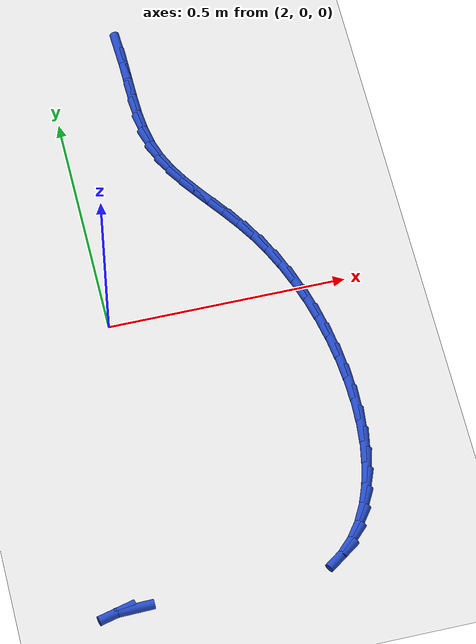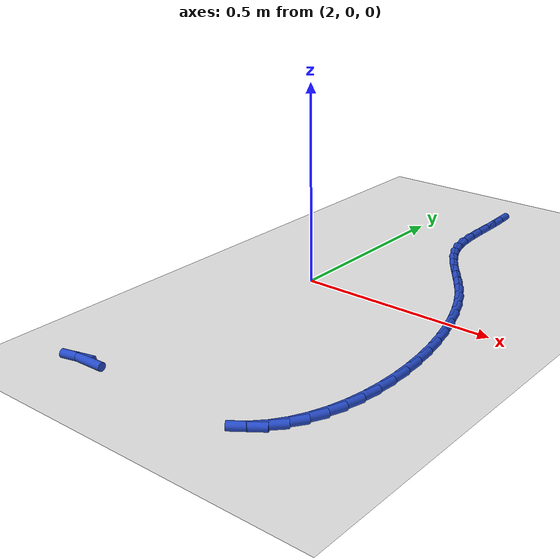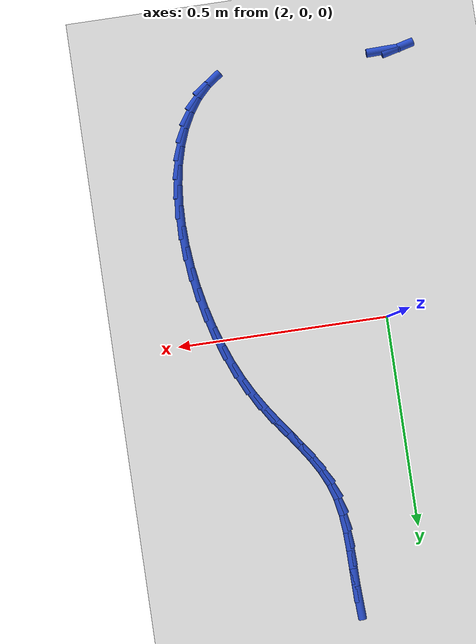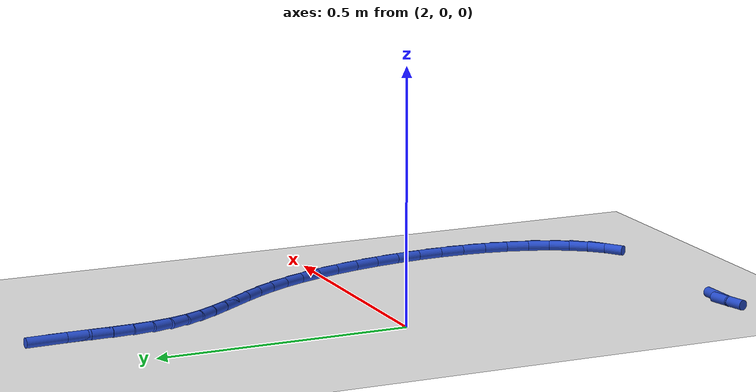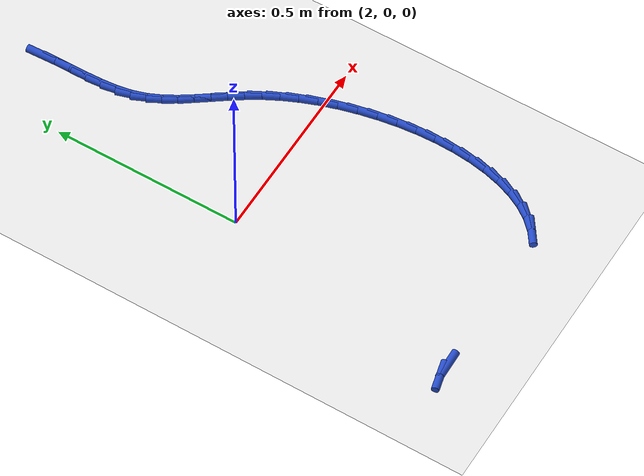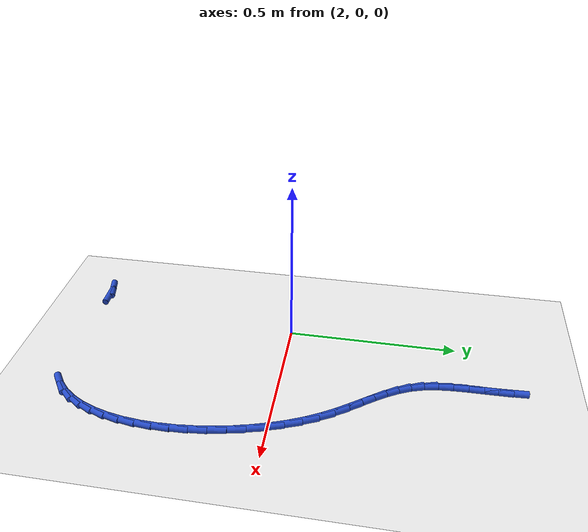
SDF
<sdf version="1.6">
 <world name="default">
  <model name="ground_plane">
   <static>1</static>
   <link name="link">
    <collision name="collision">
     <geometry><plane><normal>0 0 1</normal><size>100 100</size></plane></geometry>
     <surface><friction><ode><mu>100</mu><mu2>50</mu2></ode></friction></surface>
    </collision>
    <visual name="visual">
     <cast_shadows>0</cast_shadows>
     <geometry><plane><normal>0 0 1</normal><size>100 100</size></plane></geometry>
     <material>
      <script><uri>file://media/materials/scripts/gazebo.material</uri><name>Gazebo/WhiteGlow</name></script>
     </material>
    </visual>
   </link>
  </model>
  <model name="line">
   <link name="link_83">
    <pose>2.1645863265111944 0.6554411900002047 0.01 0 1.57 -1.5287942269386707</pose>
    <collision name="collision">
     <geometry><cylinder><radius>0.01</radius><length>0.08</length></cylinder></geometry>
    </collision>
    <visual name="visual">
     <material>
      <script><name>Gazebo/Blue</name><uri>file://media/materials/scripts/gazebo.material</uri></script>
     </material>
     <geometry><cylinder><radius>0.01</radius><length>0.08</length></cylinder></geometry>
    </visual>
   </link>
   <link name="link_84">
    <pose>2.1663398544412753 0.6137171657905847 0.01 0 1.57 -1.5593314493701491</pose>
    <collision name="collision">
     <geometry><cylinder><radius>0.01</radius><length>0.08</length></cylinder></geometry>
    </collision>
    <visual name="visual">
     <material>
      <script><name>Gazebo/Blue</name><uri>file://media/materials/scripts/gazebo.material</uri></script>
     </material>
     <geometry><cylinder><radius>0.01</radius><length>0.08</length></cylinder></geometry>
    </visual>
   </link>
   <link name="link_85">
    <pose>2.16682685572055 0.5712413569927697 0.01 0 1.57 -1.561846227927909</pose>
    <collision name="collision">
     <geometry><cylinder><radius>0.01</radius><length>0.08</length></cylinder></geometry>
    </collision>
    <visual name="visual">
     <material>
      <script><name>Gazebo/Blue</name><uri>file://media/materials/scripts/gazebo.material</uri></script>
     </material>
     <geometry><cylinder><radius>0.01</radius><length>0.08</length></cylinder></geometry>
    </visual>
   </link>
   <link name="link_86">
    <pose>2.1672077922003914 0.5286802284619948 0.01 0 1.57 -1.5366187379274516</pose>
    <collision name="collision">
     <geometry><cylinder><radius>0.01</radius><length>0.08</length></cylinder></geometry>
    </collision>
    <visual name="visual">
     <material>
      <script><name>Gazebo/Blue</name><uri>file://media/materials/scripts/gazebo.material</uri></script>
     </material>
     <geometry><cylinder><radius>0.01</radius><length>0.08</length></cylinder></geometry>
    </visual>
   </link>
   <link name="link_87">
    <pose>2.1686431257321757 0.4867002450534943 0.01 0 1.57 -1.481421027224333</pose>
    <collision name="collision">
     <geometry><cylinder><radius>0.01</radius><length>0.08</length></cylinder></geometry>
    </collision>
    <visual name="visual">
     <material>
      <script><name>Gazebo/Blue</name><uri>file://media/materials/scripts/gazebo.material</uri></script>
     </material>
     <geometry><cylinder><radius>0.01</radius><length>0.08</length></cylinder></geometry>
    </visual>
   </link>
   <link name="link_88">
    <pose>2.172293318167279 0.4459678716225032 0.01 0 1.57 -1.3917498787343716</pose>
    <collision name="collision">
     <geometry><cylinder><radius>0.01</radius><length>0.08</length></cylinder></geometry>
    </collision>
    <visual name="visual">
     <material>
      <script><name>Gazebo/Blue</name><uri>file://media/materials/scripts/gazebo.material</uri></script>
     </material>
     <geometry><cylinder><radius>0.01</radius><length>0.08</length></cylinder></geometry>
    </visual>
   </link>
   <link name="link_89">
    <pose>2.1793188313570764 0.4071495730242558 0.01 0 1.57 -1.2655627059166776</pose>
    <collision name="collision">
     <geometry><cylinder><radius>0.01</radius><length>0.08</length></cylinder></geometry>
    </collision>
    <visual name="visual">
     <material>
      <script><name>Gazebo/Blue</name><uri>file://media/materials/scripts/gazebo.material</uri></script>
     </material>
     <geometry><cylinder><radius>0.01</radius><length>0.08</length></cylinder></geometry>
    </visual>
   </link>
   <link name="link_90">
    <pose>2.1907629837198024 0.3708281575461531 0.01 0 1.57 -1.1391215108139365</pose>
    <collision name="collision">
     <geometry><cylinder><radius>0.01</radius><length>0.08</length></cylinder></geometry>
    </collision>
    <visual name="visual">
     <material>
      <script><name>Gazebo/Blue</name><uri>file://media/materials/scripts/gazebo.material</uri></script>
     </material>
     <geometry><cylinder><radius>0.01</radius><length>0.08</length></cylinder></geometry>
    </visual>
   </link>
   <link name="link_91">
    <pose>2.2064701773079025 0.33673024183434963 0.01 0 1.57 -1.0412037112821395</pose>
    <collision name="collision">
     <geometry><cylinder><radius>0.01</radius><length>0.08</length></cylinder></geometry>
    </collision>
    <visual name="visual">
     <material>
      <script><name>Gazebo/Blue</name><uri>file://media/materials/scripts/gazebo.material</uri></script>
     </material>
     <geometry><cylinder><radius>0.01</radius><length>0.08</length></cylinder></geometry>
    </visual>
   </link>
   <link name="link_92">
    <pose>2.2255822343494494 0.3040807036396946 0.01 0 1.57 -0.9757254795598242</pose>
    <collision name="collision">
     <geometry><cylinder><radius>0.01</radius><length>0.08</length></cylinder></geometry>
    </collision>
    <visual name="visual">
     <material>
      <script><name>Gazebo/Blue</name><uri>file://media/materials/scripts/gazebo.material</uri></script>
     </material>
     <geometry><cylinder><radius>0.01</radius><length>0.08</length></cylinder></geometry>
    </visual>
   </link>
   <link name="link_93">
    <pose>2.247232077459046 0.2720980651615733 0.01 0 1.57 -0.9424663987992978</pose>
    <collision name="collision">
     <geometry><cylinder><radius>0.01</radius><length>0.08</length></cylinder></geometry>
    </collision>
    <visual name="visual">
     <material>
      <script><name>Gazebo/Blue</name><uri>file://media/materials/scripts/gazebo.material</uri></script>
     </material>
     <geometry><cylinder><radius>0.01</radius><length>0.08</length></cylinder></geometry>
    </visual>
   </link>
   <link name="link_94">
    <pose>2.270552629251295 0.24000084859937124 0.01 0 1.57 -0.9394460169639158</pose>
    <collision name="collision">
     <geometry><cylinder><radius>0.01</radius><length>0.08</length></cylinder></geometry>
    </collision>
    <visual name="visual">
     <material>
      <script><name>Gazebo/Blue</name><uri>file://media/materials/scripts/gazebo.material</uri></script>
     </material>
     <geometry><cylinder><radius>0.01</radius><length>0.08</length></cylinder></geometry>
    </visual>
   </link>
   <link name="link_95">
    <pose>2.2946768123408003 0.20700757615247362 0.01 0 1.57 -0.9641241904062359</pose>
    <collision name="collision">
     <geometry><cylinder><radius>0.01</radius><length>0.08</length></cylinder></geometry>
    </collision>
    <visual name="visual">
     <material>
      <script><name>Gazebo/Blue</name><uri>file://media/materials/scripts/gazebo.material</uri></script>
     </material>
     <geometry><cylinder><radius>0.01</radius><length>0.08</length></cylinder></geometry>
    </visual>
   </link>
   <link name="link_96">
    <pose>2.3187375493421625 0.17233677002026612 0.01 0 1.57 -1.0136687699276594</pose>
    <collision name="collision">
     <geometry><cylinder><radius>0.01</radius><length>0.08</length></cylinder></geometry>
    </collision>
    <visual name="visual">
     <material>
      <script><name>Gazebo/Blue</name><uri>file://media/materials/scripts/gazebo.material</uri></script>
     </material>
     <geometry><cylinder><radius>0.01</radius><length>0.08</length></cylinder></geometry>
    </visual>
   </link>
   <link name="link_97">
    <pose>2.341867762869987 0.13520695240213343 0.01 0 1.57 -1.082110295397254</pose>
    <collision name="collision">
     <geometry><cylinder><radius>0.01</radius><length>0.08</length></cylinder></geometry>
    </collision>
    <visual name="visual">
     <material>
      <script><name>Gazebo/Blue</name><uri>file://media/materials/scripts/gazebo.material</uri></script>
     </material>
     <geometry><cylinder><radius>0.01</radius><length>0.08</length></cylinder></geometry>
    </visual>
   </link>
   <link name="link_98">
    <pose>2.3632691628426152 0.0949561750106901 0.01 0 1.57 -1.1498402993242591</pose>
    <collision name="collision">
     <geometry><cylinder><radius>0.01</radius><length>0.08</length></cylinder></geometry>
    </collision>
    <visual name="visual">
     <material>
      <script><name>Gazebo/Blue</name><uri>file://media/materials/scripts/gazebo.material</uri></script>
     </material>
     <geometry><cylinder><radius>0.01</radius><length>0.08</length></cylinder></geometry>
    </visual>
   </link>
   <link name="link_99">
    <pose>2.382616158034814 0.051743883349846906 0.01 0 1.57 -1.211263069067479</pose>
    <collision name="collision">
     <geometry><cylinder><radius>0.01</radius><length>0.08</length></cylinder></geometry>
    </collision>
    <visual name="visual">
     <material>
      <script><name>Gazebo/Blue</name><uri>file://media/materials/scripts/gazebo.material</uri></script>
     </material>
     <geometry><cylinder><radius>0.01</radius><length>0.08</length></cylinder></geometry>
    </visual>
   </link>
   <link name="link_100">
    <pose>2.3997818230511556 0.0060747382269348265 0.01 0 1.57 -1.2683553480783911</pose>
    <collision name="collision">
     <geometry><cylinder><radius>0.01</radius><length>0.08</length></cylinder></geometry>
    </collision>
    <visual name="visual">
     <material>
      <script><name>Gazebo/Blue</name><uri>file://media/materials/scripts/gazebo.material</uri></script>
     </material>
     <geometry><cylinder><radius>0.01</radius><length>0.08</length></cylinder></geometry>
    </visual>
   </link>
   <link name="link_101">
    <pose>2.4146399191171124 -0.04154540643138603 0.01 0 1.57 -1.3227898475554039</pose>
    <collision name="collision">
     <geometry><cylinder><radius>0.01</radius><length>0.08</length></cylinder></geometry>
    </collision>
    <visual name="visual">
     <material>
      <script><name>Gazebo/Blue</name><uri>file://media/materials/scripts/gazebo.material</uri></script>
     </material>
     <geometry><cylinder><radius>0.01</radius><length>0.08</length></cylinder></geometry>
    </visual>
   </link>
   <link name="link_102">
    <pose>2.4270642074581543 -0.09061069669845565 0.01 0 1.57 -1.3760302588686746</pose>
    <collision name="collision">
     <geometry><cylinder><radius>0.01</radius><length>0.08</length></cylinder></geometry>
    </collision>
    <visual name="visual">
     <material>
      <script><name>Gazebo/Blue</name><uri>file://media/materials/scripts/gazebo.material</uri></script>
     </material>
     <geometry><cylinder><radius>0.01</radius><length>0.08</length></cylinder></geometry>
    </visual>
   </link>
   <link name="link_103">
    <pose>2.436928449299754 -0.14061527864761392 0.01 0 1.57 -1.4294331427408962</pose>
    <collision name="collision">
     <geometry><cylinder><radius>0.01</radius><length>0.08</length></cylinder></geometry>
    </collision>
    <visual name="visual">
     <material>
      <script><name>Gazebo/Blue</name><uri>file://media/materials/scripts/gazebo.material</uri></script>
     </material>
     <geometry><cylinder><radius>0.01</radius><length>0.08</length></cylinder></geometry>
    </visual>
   </link>
   <link name="link_104">
    <pose>2.444106405867381 -0.19105329835220072 0.01 0 1.57 -1.484337525440249</pose>
    <collision name="collision">
     <geometry><cylinder><radius>0.01</radius><length>0.08</length></cylinder></geometry>
    </collision>
    <visual name="visual">
     <material>
      <script><name>Gazebo/Blue</name><uri>file://media/materials/scripts/gazebo.material</uri></script>
     </material>
     <geometry><cylinder><radius>0.01</radius><length>0.08</length></cylinder></geometry>
    </visual>
   </link>
   <link name="link_105">
    <pose>2.4484718383865074 -0.241418901885556 0.01 0 1.57 -1.5421488918212187</pose>
    <collision name="collision">
     <geometry><cylinder><radius>0.01</radius><length>0.08</length></cylinder></geometry>
    </collision>
    <visual name="visual">
     <material>
      <script><name>Gazebo/Blue</name><uri>file://media/materials/scripts/gazebo.material</uri></script>
     </material>
     <geometry><cylinder><radius>0.01</radius><length>0.08</length></cylinder></geometry>
    </visual>
   </link>
   <link name="link_106">
    <pose>2.4498985080826037 -0.29120623532101964 0.01 0 1.57 1.5371699114545667</pose>
    <collision name="collision">
     <geometry><cylinder><radius>0.01</radius><length>0.08</length></cylinder></geometry>
    </collision>
    <visual name="visual">
     <material>
      <script><name>Gazebo/Blue</name><uri>file://media/materials/scripts/gazebo.material</uri></script>
     </material>
     <geometry><cylinder><radius>0.01</radius><length>0.08</length></cylinder></geometry>
    </visual>
   </link>
   <link name="link_107">
    <pose>2.448260176181142 -0.33990944473193146 0.01 0 1.57 1.4686432551191324</pose>
    <collision name="collision">
     <geometry><cylinder><radius>0.01</radius><length>0.08</length></cylinder></geometry>
    </collision>
    <visual name="visual">
     <material>
      <script><name>Gazebo/Blue</name><uri>file://media/materials/scripts/gazebo.material</uri></script>
     </material>
     <geometry><cylinder><radius>0.01</radius><length>0.08</length></cylinder></geometry>
    </visual>
   </link>
   <link name="link_108">
    <pose>2.4434306039075926 -0.38702267619163166 0.01 0 1.57 1.3917585557977132</pose>
    <collision name="collision">
     <geometry><cylinder><radius>0.01</radius><length>0.08</length></cylinder></geometry>
    </collision>
    <visual name="visual">
     <material>
      <script><name>Gazebo/Blue</name><uri>file://media/materials/scripts/gazebo.material</uri></script>
     </material>
     <geometry><cylinder><radius>0.01</radius><length>0.08</length></cylinder></geometry>
    </visual>
   </link>
   <link name="link_109">
    <pose>2.435283552487427 -0.43204007577345976 0.01 0 1.57 1.3040429834823106</pose>
    <collision name="collision">
     <geometry><cylinder><radius>0.01</radius><length>0.08</length></cylinder></geometry>
    </collision>
    <visual name="visual">
     <material>
      <script><name>Gazebo/Blue</name><uri>file://media/materials/scripts/gazebo.material</uri></script>
     </material>
     <geometry><cylinder><radius>0.01</radius><length>0.08</length></cylinder></geometry>
    </visual>
   </link>
   <link name="link_110">
    <pose>2.423692783146117 -0.47445578955075607 0.01 0 1.57 1.2026876619569133</pose>
    <collision name="collision">
     <geometry><cylinder><radius>0.01</radius><length>0.08</length></cylinder></geometry>
    </collision>
    <visual name="visual">
     <material>
      <script><name>Gazebo/Blue</name><uri>file://media/materials/scripts/gazebo.material</uri></script>
     </material>
     <geometry><cylinder><radius>0.01</radius><length>0.08</length></cylinder></geometry>
    </visual>
   </link>
   <link name="link_111">
    <pose>2.408532057109132 -0.5137639635968603 0.01 0 1.57 1.084779692407952</pose>
    <collision name="collision">
     <geometry><cylinder><radius>0.01</radius><length>0.08</length></cylinder></geometry>
    </collision>
    <visual name="visual">
     <material>
      <script><name>Gazebo/Blue</name><uri>file://media/materials/scripts/gazebo.material</uri></script>
     </material>
     <geometry><cylinder><radius>0.01</radius><length>0.08</length></cylinder></geometry>
    </visual>
   </link>
   <link name="link_112">
    <pose>2.389675135601945 -0.5494587439851122 0.01 0 1.57 0.9479219685859688</pose>
    <collision name="collision">
     <geometry><cylinder><radius>0.01</radius><length>0.08</length></cylinder></geometry>
    </collision>
    <visual name="visual">
     <material>
      <script><name>Gazebo/Blue</name><uri>file://media/materials/scripts/gazebo.material</uri></script>
     </material>
     <geometry><cylinder><radius>0.01</radius><length>0.08</length></cylinder></geometry>
    </visual>
   </link>
   <link name="link_113">
    <pose>2.3669957798500274 -0.5810342767888521 0.01 0 1.57 0.7914154813606505</pose>
    <collision name="collision">
     <geometry><cylinder><radius>0.01</radius><length>0.08</length></cylinder></geometry>
    </collision>
    <visual name="visual">
     <material>
      <script><name>Gazebo/Blue</name><uri>file://media/materials/scripts/gazebo.material</uri></script>
     </material>
     <geometry><cylinder><radius>0.01</radius><length>0.08</length></cylinder></geometry>
    </visual>
   </link>
   <link name="link_114">
    <pose>2.3403677510788476 -0.6079847080814195 0.01 0 1.57 0.6178472415619647</pose>
    <collision name="collision">
     <geometry><cylinder><radius>0.01</radius><length>0.08</length></cylinder></geometry>
    </collision>
    <visual name="visual">
     <material>
      <script><name>Gazebo/Blue</name><uri>file://media/materials/scripts/gazebo.material</uri></script>
     </material>
     <geometry><cylinder><radius>0.01</radius><length>0.08</length></cylinder></geometry>
    </visual>
   </link>
   <link name="link_124">
    <pose>1.9161386391324204 -0.6279214906775133 0.01 0 1.57 0.023641976721577227</pose>
    <collision name="collision">
     <geometry><cylinder><radius>0.01</radius><length>0.08</length></cylinder></geometry>
    </collision>
    <visual name="visual">
     <material>
      <script><name>Gazebo/Blue</name><uri>file://media/materials/scripts/gazebo.material</uri></script>
     </material>
     <geometry><cylinder><radius>0.01</radius><length>0.08</length></cylinder></geometry>
    </visual>
   </link>
   <link name="link_125">
    <pose>1.8813076636712176 -0.6287451172477281 0.01 0 1.57 0.24284659770025224</pose>
    <collision name="collision">
     <geometry><cylinder><radius>0.01</radius><length>0.08</length></cylinder></geometry>
    </collision>
    <visual name="visual">
     <material>
      <script><name>Gazebo/Blue</name><uri>file://media/materials/scripts/gazebo.material</uri></script>
     </material>
     <geometry><cylinder><radius>0.01</radius><length>0.08</length></cylinder></geometry>
    </visual>
   </link>
  </model>
 </world>
</sdf>
